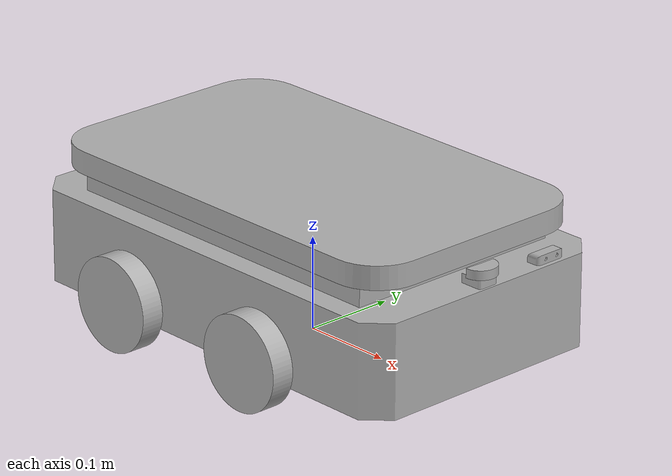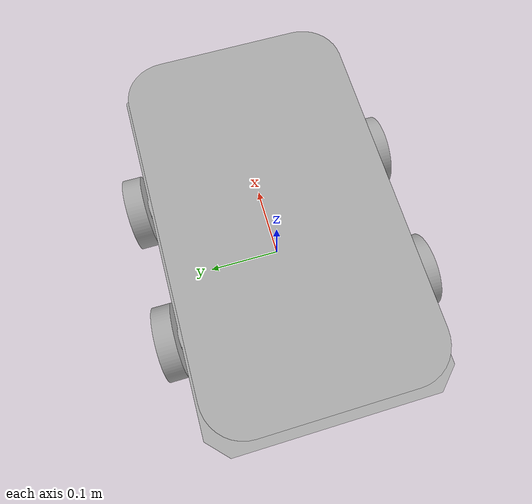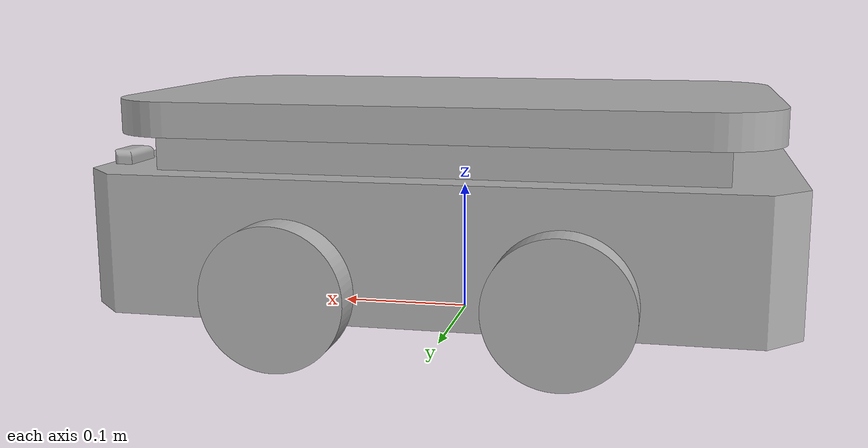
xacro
<?xml version="1.0" ?>
<robot name="rusty" xmlns:xacro="http://www.ros.org/wiki/xacro">

<xacro:include filename="$(find rusty_description)/urdf/materials.xacro" />
<xacro:include filename="$(find rusty_description)/urdf/rusty.trans" />
<xacro:include filename="$(find rusty_description)/urdf/rusty.gazebo" />
<link name="base_link">
  <inertial>
    <origin xyz="0.0002544970294304579 -2.7411733823236023e-17 0.08341254857000653" rpy="0 0 0"/>
    <mass value="14.333340375312384"/>
    <inertia ixx="0.173307" iyy="0.373229" izz="0.490917" ixy="0.0" iyz="0.0" ixz="-0.000171"/>
  </inertial>
  <visual>
    <origin xyz="0 0 0" rpy="0 0 0"/>
    <geometry>
      <mesh filename="file://$(find rusty_description)/meshes/base_link.stl" scale="0.001 0.001 0.001"/>
    </geometry>
    <material name="silver"/>
  </visual>
  <collision>
    <origin xyz="0 0 0" rpy="0 0 0"/>
    <geometry>
      <mesh filename="file://$(find rusty_description)/meshes/base_link.stl" scale="0.001 0.001 0.001"/>
    </geometry>
  </collision>
</link>

<link name="RW2_1">
  <inertial>
    <origin xyz="1.3877787807814457e-17 -0.012499999999999983 0.0" rpy="0 0 0"/>
    <mass value="0.18260507298990683"/>
    <inertia ixx="0.000124" iyy="0.000228" izz="0.000124" ixy="-0.0" iyz="0.0" ixz="0.0"/>
  </inertial>
  <visual>
    <origin xyz="0.095 0.16 -0.05" rpy="0 0 0"/>
    <geometry>
      <mesh filename="file://$(find rusty_description)/meshes/RW2_1.stl" scale="0.001 0.001 0.001"/>
    </geometry>
    <material name="silver"/>
  </visual>
  <collision>
    <origin xyz="0.095 0.16 -0.05" rpy="0 0 0"/>
    <geometry>
      <mesh filename="file://$(find rusty_description)/meshes/RW2_1.stl" scale="0.001 0.001 0.001"/>
    </geometry>
  </collision>
</link>

<link name="RW1_1">
  <inertial>
    <origin xyz="-1.3877787807814457e-17 -0.012499999999999983 6.938893903907228e-18" rpy="0 0 0"/>
    <mass value="0.1826050729899068"/>
    <inertia ixx="0.000124" iyy="0.000228" izz="0.000124" ixy="-0.0" iyz="0.0" ixz="-0.0"/>
  </inertial>
  <visual>
    <origin xyz="-0.095 0.16 -0.05" rpy="0 0 0"/>
    <geometry>
      <mesh filename="file://$(find rusty_description)/meshes/RW1_1.stl" scale="0.001 0.001 0.001"/>
    </geometry>
    <material name="silver"/>
  </visual>
  <collision>
    <origin xyz="-0.095 0.16 -0.05" rpy="0 0 0"/>
    <geometry>
      <mesh filename="file://$(find rusty_description)/meshes/RW1_1.stl" scale="0.001 0.001 0.001"/>
    </geometry>
  </collision>
</link>

<link name="LW2_1">
  <inertial>
    <origin xyz="0.0 0.012499999999999928 0.0" rpy="0 0 0"/>
    <mass value="0.18260507298990683"/>
    <inertia ixx="0.000124" iyy="0.000228" izz="0.000124" ixy="0.0" iyz="-0.0" ixz="-0.0"/>
  </inertial>
  <visual>
    <origin xyz="0.095 -0.16 -0.05" rpy="0 0 0"/>
    <geometry>
      <mesh filename="file://$(find rusty_description)/meshes/LW2_1.stl" scale="0.001 0.001 0.001"/>
    </geometry>
    <material name="silver"/>
  </visual>
  <collision>
    <origin xyz="0.095 -0.16 -0.05" rpy="0 0 0"/>
    <geometry>
      <mesh filename="file://$(find rusty_description)/meshes/LW2_1.stl" scale="0.001 0.001 0.001"/>
    </geometry>
  </collision>
</link>

<link name="LW1_1">
  <inertial>
    <origin xyz="2.7755575615628914e-17 0.012500000000000039 2.0816681711721685e-17" rpy="0 0 0"/>
    <mass value="0.1826050729899069"/>
    <inertia ixx="0.000124" iyy="0.000228" izz="0.000124" ixy="0.0" iyz="0.0" ixz="0.0"/>
  </inertial>
  <visual>
    <origin xyz="-0.095 -0.16 -0.05" rpy="0 0 0"/>
    <geometry>
      <mesh filename="file://$(find rusty_description)/meshes/LW1_1.stl" scale="0.001 0.001 0.001"/>
    </geometry>
    <material name="silver"/>
  </visual>
  <collision>
    <origin xyz="-0.095 -0.16 -0.05" rpy="0 0 0"/>
    <geometry>
      <mesh filename="file://$(find rusty_description)/meshes/LW1_1.stl" scale="0.001 0.001 0.001"/>
    </geometry>
  </collision>
</link>

<link name="Holder_1">
  <inertial>
    <origin xyz="-4.445233212745621e-17 0.0 0.012500000000000011" rpy="0 0 0"/>
    <mass value="25.69775961700859"/>
    <inertia ixx="0.165882" iyy="0.4688" izz="0.632005" ixy="0.0" iyz="0.0" ixz="-0.0"/>
  </inertial>
  <visual>
    <origin xyz="-0.0 -0.0 -0.15" rpy="0 0 0"/>
    <geometry>
      <mesh filename="file://$(find rusty_description)/meshes/Holder_1.stl" scale="0.001 0.001 0.001"/>
    </geometry>
    <material name="silver"/>
  </visual>
  <collision>
    <origin xyz="-0.0 -0.0 -0.15" rpy="0 0 0"/>
    <geometry>
      <mesh filename="file://$(find rusty_description)/meshes/Holder_1.stl" scale="0.001 0.001 0.001"/>
    </geometry>
  </collision>
</link>

<link name="Lidar_1">
  <inertial>
    <origin xyz="0.007402159277225678 -0.00023091322011423596 0.0050000000000000044" rpy="0 0 0"/>
    <mass value="0.008257286244679606"/>
    <inertia ixx="1e-06" iyy="0.0" izz="1e-06" ixy="-0.0" iyz="0.0" ixz="0.0"/>
  </inertial>
  <visual>
    <origin xyz="-0.235 -0.0 -0.135" rpy="0 0 0"/>
    <geometry>
      <mesh filename="file://$(find rusty_description)/meshes/Lidar_1.stl" scale="0.001 0.001 0.001"/>
    </geometry>
    <material name="silver"/>
  </visual>
  <collision>
    <origin xyz="-0.235 -0.0 -0.135" rpy="0 0 0"/>
    <geometry>
      <mesh filename="file://$(find rusty_description)/meshes/Lidar_1.stl" scale="0.001 0.001 0.001"/>
    </geometry>
  </collision>
</link>

<link name="Camera_1">
  <inertial>
    <origin xyz="0.015039497744837121 0.0750001326555918 -0.02024300342659574" rpy="0 0 0"/>
    <mass value="0.007791207915918992"/>
    <inertia ixx="1e-06" iyy="0.0" izz="1e-06" ixy="-0.0" iyz="0.0" ixz="-0.0"/>
  </inertial>
  <visual>
    <origin xyz="-0.222588 -0.012099 -0.15" rpy="0 0 0"/>
    <geometry>
      <mesh filename="file://$(find rusty_description)/meshes/Camera_1.stl" scale="0.001 0.001 0.001"/>
    </geometry>
    <material name="silver"/>
  </visual>
  <collision>
    <origin xyz="-0.222588 -0.012099 -0.15" rpy="0 0 0"/>
    <geometry>
      <mesh filename="file://$(find rusty_description)/meshes/Camera_1.stl" scale="0.001 0.001 0.001"/>
    </geometry>
  </collision>
</link>

<joint name="RW2" type="continuous">
  <origin xyz="-0.095 -0.16 0.05" rpy="0 0 0"/>
  <parent link="base_link"/>
  <child link="RW2_1"/>
  <axis xyz="0.0 1.0 0.0"/>
</joint>

<joint name="RW1" type="continuous">
  <origin xyz="0.095 -0.16 0.05" rpy="0 0 0"/>
  <parent link="base_link"/>
  <child link="RW1_1"/>
  <axis xyz="0.0 1.0 0.0"/>
</joint>

<joint name="LW2" type="continuous">
  <origin xyz="-0.095 0.16 0.05" rpy="0 0 0"/>
  <parent link="base_link"/>
  <child link="LW2_1"/>
  <axis xyz="0.0 1.0 0.0"/>
</joint>

<joint name="LW1" type="continuous">
  <origin xyz="0.095 0.16 0.05" rpy="0 0 0"/>
  <parent link="base_link"/>
  <child link="LW1_1"/>
  <axis xyz="0.0 1.0 0.0"/>
</joint>

<joint name="Rigid 10" type="fixed">
  <origin xyz="0.0 0.0 0.15" rpy="0 0 0"/>
  <parent link="base_link"/>
  <child link="Holder_1"/>
</joint>

<joint name="laser" type="fixed">
  <origin xyz="0.235 0.0 0.135" rpy="0 0 0"/>
  <parent link="base_link"/>
  <child link="Lidar_1"/>
</joint>

<joint name="camera" type="fixed">
  <origin xyz="0.222588 0.012099 0.15" rpy="0 0 0"/>
  <parent link="base_link"/>
  <child link="Camera_1"/>
</joint>

</robot>

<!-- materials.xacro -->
<robot name="rusty" xmlns:xacro="http://www.ros.org/wiki/xacro" >

  <material name="silver">
    <color rgba="0.700 0.700 0.700 1.000"/>
  </material>

  <material name="black">
    <color rgba="0.0 0.0 0.0 1.0"/>
  </material>

  <material name="blue">
    <color rgba="0.0 0.0 0.8 1.0"/>
  </material>

  <material name="green">
    <color rgba="0.0 0.8 0.0 1.0"/>
  </material>

  <material name="grey">
    <color rgba="0.2 0.2 0.2 1.0"/>
  </material>

  <material name="orange">
    <color rgba="${255/255} ${108/255} ${10/255} 1.0"/>
  </material>

  <material name="brown">
    <color rgba="${222/255} ${207/255} ${195/255} 1.0"/>
  </material>

  <material name="yellow">
    <color rgba="${0/255} ${180/255} ${180/255} 1.0"/>
  </material>

  <material name="red">
    <color rgba="0.8 0.0 0.0 1.0"/>
  </material>

  <material name="white">
    <color rgba="1.0 1.0 1.0 1.0"/>
  </material>

</robot>

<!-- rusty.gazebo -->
<robot name="rusty" xmlns:xacro="http://www.ros.org/wiki/xacro" >

<xacro:property name="body_color" value="Gazebo/Silver" />
<xacro:property name="wheel_color" value="Gazebo/Black" />
<xacro:property name="lidar_color" value="Gazebo/Blue" />
<xacro:property name="camera_color" value="Gazebo/Red" />

<gazebo>
  <plugin name="control" filename="libgazebo_ros_control.so"/>
</gazebo>
<gazebo reference="base_link">
  <material>${body_color}</material>
  <mu1>0.2</mu1>
  <mu2>0.2</mu2>
  <self_collide>true</self_collide>
  <gravity>true</gravity>
</gazebo>

<gazebo reference="RW2_1">
  <material>${wheel_color}</material>
  <mu1>0.2</mu1>
  <mu2>0.2</mu2>
  <self_collide>true</self_collide>
</gazebo>

<gazebo reference="RW1_1">
  <material>${wheel_color}</material>
  <mu1>0.2</mu1>
  <mu2>0.2</mu2>
  <self_collide>true</self_collide>
</gazebo>

<gazebo reference="LW2_1">
  <material>${wheel_color}</material>
  <mu1>0.2</mu1>
  <mu2>0.2</mu2>
  <self_collide>true</self_collide>
</gazebo>

<gazebo reference="LW1_1">
  <material>${wheel_color}</material>
  <mu1>0.2</mu1>
  <mu2>0.2</mu2>
  <self_collide>true</self_collide>
</gazebo>

<gazebo reference="Holder_1">
  <material>${wheel_color}</material>
  <mu1>0.2</mu1>
  <mu2>0.2</mu2>
  <self_collide>true</self_collide>
</gazebo>

<gazebo reference="Lidar_1">
  <material>${lidar_color}</material>
  <mu1>0.2</mu1>
  <mu2>0.2</mu2>
  <self_collide>true</self_collide>
</gazebo>

<gazebo reference="Camera_1">
  <material>${camera_color}</material>
  <mu1>0.2</mu1>
  <mu2>0.2</mu2>
  <self_collide>true</self_collide>
</gazebo>

<gazebo>
<plugin name='skid_steer_drive' filename='libgazebo_ros_diff_drive.so'>
        <ros>
          <!-- Set namespace -->

          <!-- Remap default topics -->
          <remapping>cmd_vel:=cmd_vel</remapping>
          <remapping>odom:=odom</remapping>
        </ros>

        <!-- Update rate -->
        <update_rate>500</update_rate>

        <!-- Number of wheel pairs -->
        <num_wheel_pairs>2</num_wheel_pairs>

        <!-- wheels0 -->
        <left_joint>LW1</left_joint>
        <right_joint>RW1</right_joint>

        <!-- wheels1-->
        <left_joint>LW2</left_joint>
        <right_joint>RW2</right_joint>

        <!-- kinematics -->
        <wheel_separation>0.300</wheel_separation>
        <wheel_separation>0.300</wheel_separation>

        <wheel_diameter>0.100</wheel_diameter>
        <wheel_diameter>0.100</wheel_diameter>

        <!-- limits -->
        <max_wheel_torque>20</max_wheel_torque>
        <max_wheel_acceleration>1.0</max_wheel_acceleration>

        <!-- output -->
        <publish_odom>true</publish_odom>
        <publish_odom_tf>true</publish_odom_tf>
        <publish_wheel_tf>true</publish_wheel_tf>

        <odometry_frame>odom</odometry_frame>
        <robot_base_frame>base_link</robot_base_frame>

</plugin>
</gazebo>

<gazebo reference="laser">
		<sensor name="ydlidar" type="ray">
			<always_on>true</always_on>
			<visualize>false</visualize>
			<update_rate>10</update_rate>
			<ray>
			<scan>
				<horizontal>
				<samples>720</samples>
				<resolution>1.000000</resolution>
				<min_angle>-1.57</min_angle>
				<max_angle>1.57</max_angle>
				</horizontal>
			</scan>
			<range>
				<min>0.05</min>
				<max>20.0</max>
				<resolution>0.015000</resolution>
			</range>
			<noise>
				<type>gaussian</type>
				<mean>0.0</mean>
				<stddev>0.01</stddev>
			</noise>
			</ray>
			<plugin name="scan" filename="libgazebo_ros_ray_sensor.so">
			<ros>
				<remapping>~/out:=scan</remapping>
			</ros>
			<output_type>sensor_msgs/LaserScan</output_type>
			<frame_name>Lidar_1</frame_name>
			</plugin>
		</sensor>
</gazebo>

<gazebo reference="Camera_1">
    <sensor type="camera" name="camera">
      <update_rate>30.0</update_rate>
      <camera name="head">
        <horizontal_fov>1.3962634</horizontal_fov>
        <image>
          <width>640</width>
          <height>480</height>
          <format>R8G8B8</format>
        </image>
        <clip>
          <near>0.02</near>
          <far>300</far>
        </clip>
        <noise>
          <type>gaussian</type>
          <!-- Noise is sampled independently per pixel on each frame.
               That pixel's noise value is added to each of its color
               channels, which at that point lie in the range [0,1]. -->
          <mean>0.0</mean>
          <stddev>0.007</stddev>
        </noise>

      </camera>
      <plugin name="camera_controller" filename="libgazebo_ros_camera.so">
        <alwaysOn>true</alwaysOn>
        <updateRate>0.0</updateRate>
        <cameraName>camera</cameraName>
        <imageTopicName>image_raw</imageTopicName>
        <cameraInfoTopicName>camera_info</cameraInfoTopicName>
        <frameName>camera</frameName>
        <hackBaseline>0.07</hackBaseline>
        <distortionK1>0.0</distortionK1>
        <distortionK2>0.0</distortionK2>
        <distortionK3>0.0</distortionK3>
        <distortionT1>0.0</distortionT1>
        <distortionT2>0.0</distortionT2>
      </plugin>
    </sensor>
</gazebo>

</robot>
